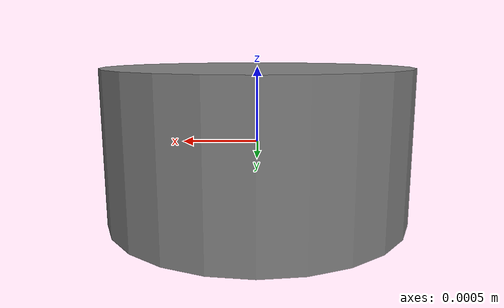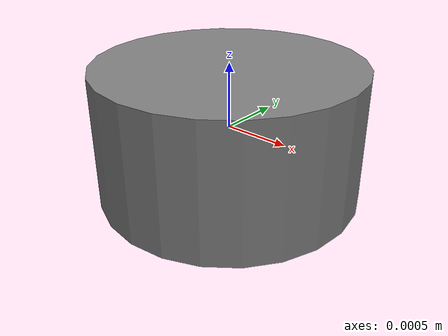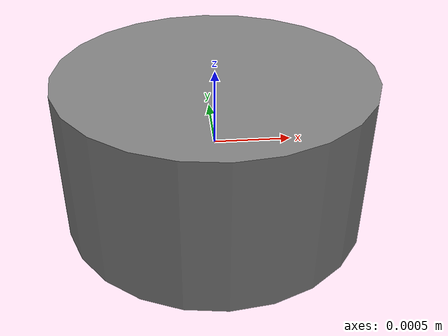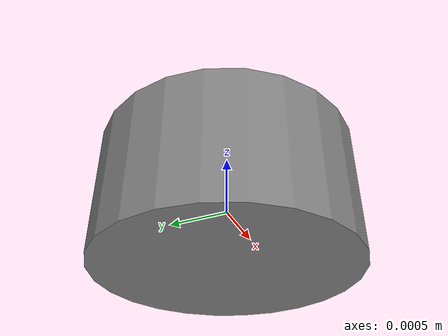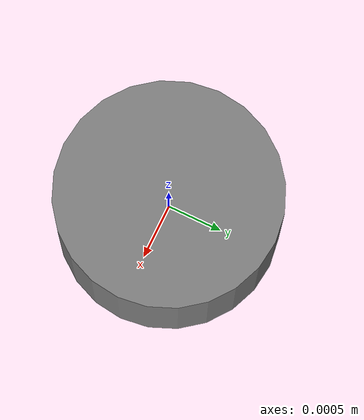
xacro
<robot name="ray_sensor" xmlns:xacro="http://wiki.ros.org/xacro">

  <link name="obsDetector_link">
    <visual>
        <geometry>
            <cylinder length="0.001" radius="0.001"/>
        </geometry>
        <material name="gray">
            <color rgba="0.5 0.5 0.5 1"/>
        </material>
    </visual>
    <collision name="obsDetector_collision">
        <geometry>
            <cylinder length="0.01" radius="0.01"/>
        </geometry>
    </collision>
    <inertial>
        <mass value="0.1"/>
        <origin xyz="0 0 0" rpy="0 0 0"/>
        <inertia ixx="0.001" ixy="0.0" ixz="0.0" iyy="0.001" iyz="0.0" izz="0.001"/>
    </inertial>
  </link>

      <!-- 使用 libgazebo_ros_laser 插件添加激光传感器 -->
	<gazebo reference="obsDetector_link">
		<sensor type="ray" name="laser_sensor">
		<pose>0 0 0 0 0 0</pose>
		<visualize>true</visualize>
		<update_rate>5.5</update_rate>
		<ray>
			<scan>
			<horizontal>
				<samples>60</samples>
				<resolution>1</resolution>
				<min_angle>-3.14</min_angle>
				<max_angle>3.14</max_angle>
			</horizontal>
			</scan>
			<range>
			<min>0.1</min>
			<max>1.0</max>
			<resolution>0.01</resolution>
			</range>
			<noise>
			<type>gaussian</type>
			<mean>0.0</mean>
			<stddev>0.01</stddev>
			</noise>
		</ray>
		<plugin name="gazebo_ros_laser" filename="libgazebo_ros_laser.so">
			<topicName>obsDetector_ray_scan</topicName>
			<frameName>obsDetector_link</frameName>
		</plugin>
		</sensor>
	</gazebo>

    <!-- 添加 Gazebo 插件 ： ray射线传感器-->

    <!-- bumper 碰撞传感器 -->

</robot>
